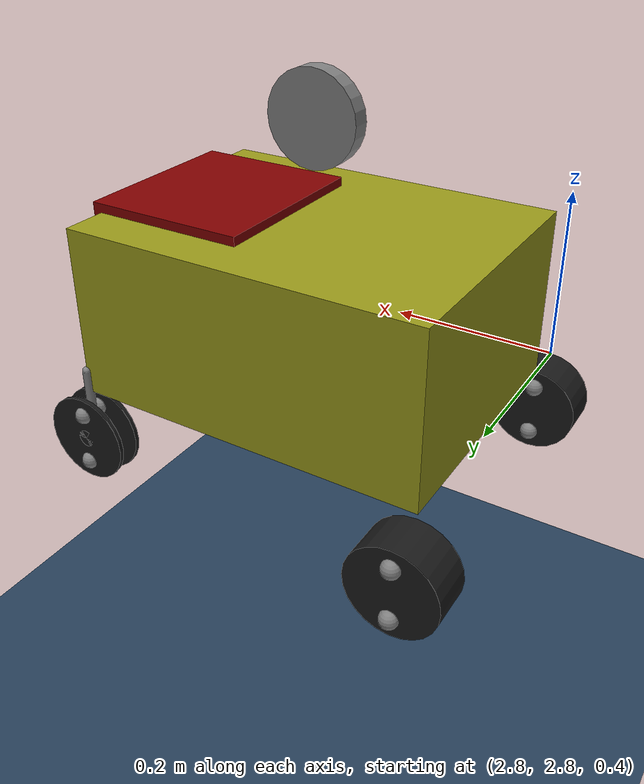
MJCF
<mujoco model="field (v0.1)">
	<option	timestep="0.01" gravity="0 0 -9.81"/>

	<include file="rover-4-wheels-diff-acker-double-front-wheel-2cam.xml"/>

	<asset>
		<texture name="floor_tex" type="2d" builtin="checker" rgb1=".2 .3 .4" rgb2=".1 .2 .3" width="100" height="100" />
		<material name="floor_material" texture="floor_tex" texuniform="true" />
	</asset>

	<worldbody>
		<geom name="ground" type="plane" size="5 5 1" pos="3 3 0" material="floor_material"/>
	</worldbody>
</mujoco>

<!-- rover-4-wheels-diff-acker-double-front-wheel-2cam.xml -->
<mujoco model="rover (v0.2)">

    <compiler inertiafromgeom="true" angle="degree"/>
	<option	timestep="0.01" gravity="0 0 -9.81"/>

	<asset>
		<material name="MatWheel" specular="1" rgba=".1 .1 .1 1"/>
		<material name="MatBody" specular="1" rgba=".6 .6 .1 1"/>
	</asset>

	<default>
		<!--making every geom collidable. expect those that dont are default-->
		<geom contype="1" conaffinity="1"/>
	</default>

	<default class="acker_solver_param">
		<!--solver impedance and reference(?) for ackerman equality constraint-->
		<!--default solimp: "0.900 0.950 0.001"-->
		<!--default solref: "0.020 1.000"-->
		<!--solref: (timeconst, dampratio)
			b = 2 / (dmax * timeconst)
			k = d(r) / (dmax * dmax * timeconst * timeconst * dampratio * dampratio)
		-->
		<equality solimp="0.9950 0.9990 0.0001" solref="0.0100 0.7500"/>
	</default>

	<visual>
		<headlight active="1"/>
		<scale camera=".5"/>
		<map znear="0.001" zfar="1000"/>
	</visual>

    <worldbody>

		<!--Floor for testing only the rover-->
		<!--geom type="plane" size="10 10 10"/-->

		<!--Post for testing camera hit box collision-->
		<!--geom type="cylinder" size=".1 1" pos="6 3.01 0" rgba="1 1 0 1"/-->

		<body name="rover" pos="3 3 .5">

			<light name="lamp" active="true" directional="true" cutoff="4" exponent="20" diffuse="1 1 1" specular="0 0 0" pos="0 0 2.5" dir="0 0 -1 "/>
			<!-- cameras 3° pra dentro-->

			<!-- cameras 3,5° pra dentro-->

			<!-- cameras 4° pra dentro-->
			<camera name="first-person-r" mode="fixed" pos=".22 -0.1 .08" quat="0.670695 0.291627 -0.271946 -0.625433" fovy="90"/>
			<camera name="first-person-l" mode="fixed" pos=".22 0.1 .08" quat="0.625433 0.271946 -0.291627 -0.670695" fovy="90"/>
			<geom name="camera-hit-box-r" type="box" size=".05 .05 .03" pos=".22 -0.1 .08" quat="0.670695 0.291627 -0.271946 -0.625433" mass="0" rgba="0.3 0 0 0"/>
			<geom name="camera-hit-box-l" type="box" size=".05 .05 .03" pos=".22 0.1 .08"  quat="0.625433 0.271946 -0.291627 -0.670695" mass="0" rgba="0.3 0 0 0"/>

			<joint name="centroid" type="free" pos="0 0 0"/>
            <geom name="rover-body" type="box" pos="0 0 0" size="0.2 0.15 .095" mass="12" material="MatBody"/>
			<site type="box" size=".09 .1 .09" pos=".12 0 .015" rgba=".5 0 0 1"/>
            <body name="r-l-wheel" pos="-0.2 0.15 -0.15">
                <joint name="r-l-drive-hinge" type="hinge" pos="0 0 0" axis="0 1 0" damping="0.01" />
                <geom type="cylinder" size=".05" fromto="0 0 0 0 0.05 0" mass=".125" material="MatWheel" condim="4"/>
				<site size=".01" pos="0 .05 .03"/>
				<site size=".01" pos="0 .05 -.03"/>
				<site size=".01" pos="0 0 .03"/>
				<site size=".01" pos="0 0 -.03"/>
            </body>
            <body name="r-r-wheel" pos="-0.2 -0.15 -0.15">
                <joint name="r-r-drive-hinge" type="hinge" pos="0 0 0" axis="0 1 0" damping="0.01"/>
                <geom type="cylinder" size=".05" fromto="0 0 0 0 -0.05 0" mass=".125" material="MatWheel" condim="4"/>
				<site size=".01" pos="0 -.05 .03"/>
				<site size=".01" pos="0 -.05 -.03"/>
				<site size=".01" pos="0 0 .03"/>
				<site size=".01" pos="0 0 -.03"/>
            </body>
			<body name="ghost-steer-wheel" pos="0 0 .2">
                <joint name="ghost-steer-hinge" type="hinge" pos="0 0 0" axis="0 0 1" limited="true" range="-17 17" damping="0"/>
				<geom type="cylinder" size=".05 .01" axisangle="1 0 0 90" contype="2" conaffinity="2" mass="0.002"/>
			</body>
			<body name="f-l-wheel" pos=".2 0.15 -.15">
				<geom type="capsule" size = ".005" fromto="0 0 0 0 0 .08" contype="2" conaffinity="2"/>
				<!-- Because of equality constraint, its range (in radians) is: [-0.59 +.59 -->
				<joint name="f-l-steer-hinge" type="hinge" pos="0 0 0" axis="0 0 1" damping="0.01" limited="true" range="-40 40"/>
				<body name="f-l-axis">
					<geom type="cylinder" size=".01" fromto="0 -.015 0 0 0.015 0" mass=".125" material="MatWheel"/>
					<body name="f-l-l-wheel">
						<joint name="f-l-drive-hinge-1" type="hinge" pos="0 0 0" axis="0 1 0" damping="0.01"/>
						<geom type="cylinder" size=".05" fromto="0 -.015 0 0 -0.010 0" mass=".125" material="MatWheel" condim="4"/>
					<site size=".01" pos="0 -0.0125  0.03"/>
					<site size=".01" pos="0 -0.0125 -0.03"/>
					</body>
					<body name="f-l-r-wheel">
						<joint name="f-l-drive-hinge-2" type="hinge" pos="0 0 0" axis="0 1 0" damping="0.01"/>
						<geom type="cylinder" size=".05" fromto="0 .010 0 0 0.015 0" mass=".125" material="MatWheel" condim="4"/>
						<site size=".01" pos="0  0.0125  0.03"/>
						<site size=".01" pos="0  0.0125 -0.03"/>
					</body>
				</body>
			</body>
			<body name="f-r-wheel" pos=".2 -0.15 -.15">
				<geom type="capsule" size = ".005" fromto="0 0 0 0 0 .08" contype="2" conaffinity="2"/>
				<!-- Because of equality constraint, its range (in radians) is: [-0.59 +.59 -->
				<joint name="f-r-steer-hinge" type="hinge" pos="0 0 0" axis="0 0 1" damping="0.01" limited="true" range="-40 40"/>

				<body name="f-r-axis">
					<geom type="cylinder" size=".01" fromto="0 -.015 0 0 0.015 0" mass=".125" material="MatWheel"/>
					<body name="f-r-l-wheel">
						<joint name="f-l-drive-hinge-3" type="hinge" pos="0 0 0" axis="0 1 0" damping="0.01"/>
						<geom type="cylinder" size=".05" fromto="0 -.015 0 0 -0.010 0" mass=".125" material="MatWheel" condim="4"/>
					<site size=".01" pos="0 -0.0125  0.03"/>
					<site size=".01" pos="0 -0.0125 -0.03"/>
					</body>
					<body name="f-r-r-wheel">
						<joint name="f-l-drive-hinge-4" type="hinge" pos="0 0 0" axis="0 1 0" damping="0.01"/>
						<geom type="cylinder" size=".05" fromto="0 .010 0 0 0.015 0" mass=".125" material="MatWheel" condim="4"/>
						<site size=".01" pos="0  0.0125  0.03"/>
						<site size=".01" pos="0  0.0125 -0.03"/>
					</body>
				</body>
			</body>

        </body>
    </worldbody>

	<tendon>
		<fixed name="rear-differential">
			<joint joint="r-l-drive-hinge" coef="1"/>
			<joint joint="r-r-drive-hinge" coef="1"/>
		</fixed>
	</tendon>

    <actuator>
        <position name="ghost-steer" joint="ghost-steer-hinge" ctrllimited="true" ctrlrange="-.29 .29" gear="1"/>
        <motor name="drive" tendon="rear-differential" ctrllimited="true" ctrlrange="-1.0 1.0" gear="1.5"/>
    </actuator>
	<!--
		joint1: y
		joint2: x
		polycoef: a0 a1 a2 a3 a4
		y-y0 = a0 + a1*(x-x0) + a2*(x-x0)^2 + a3*(x-x0)^3 + a4*(x-x0)^4
	-->
	<equality>
		<joint name="f-l-steer-hinge" joint1="f-l-steer-hinge" joint2="ghost-steer-hinge" polycoef="0.000093610018132620019 2.0041497325730204 1.4716131190668178 -1.0929725380842041 -3.2252012765547819" solimp="0.9950 0.9990 0.0001" solref="0.0100 0.7500"/>
		<joint name="f-r-steer-hinge" joint1="f-r-steer-hinge" joint2="ghost-steer-hinge" polycoef="-0.00017013070152971507 2.0039379507086514 -1.4684576386267671 -1.0901354124362155 3.1974185558159771" solimp="0.9950 0.9990 0.0001" solref="0.0100 0.7500"/>
	</equality>

</mujoco>
